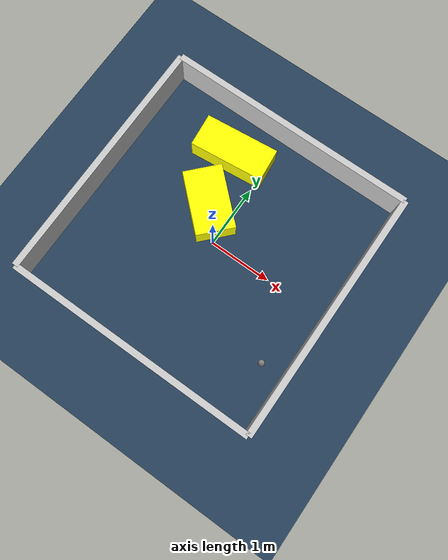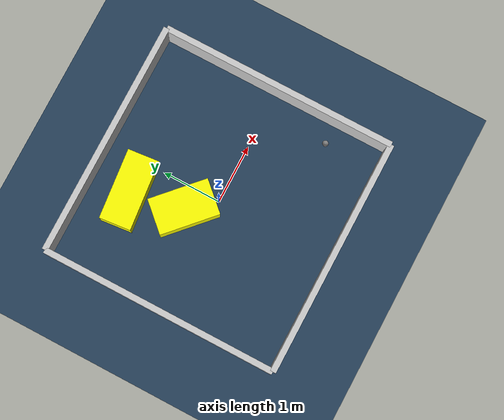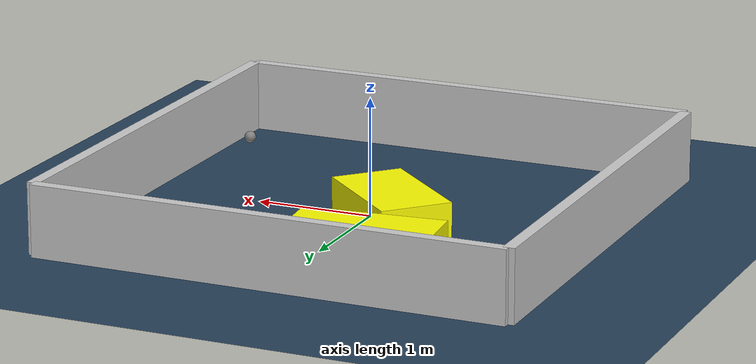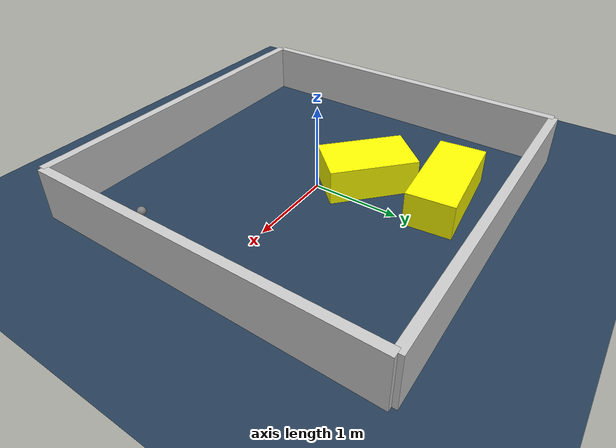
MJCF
<?xml version="1.0" ?>
<mujoco model="generated_environment">
  <option timestep="0.01" integrator="RK4" cone="elliptic"/>
  <default>
    <geom density="1"/>
  </default>
  <asset>
    <texture builtin="gradient" height="3072" rgb1="0.3 0.5 0.7" rgb2="0 0 0" type="skybox" width="512"/>
    <texture builtin="checker" height="300" mark="edge" markrgb="0.8 0.8 0.8" name="groundplane" rgb1="0.2 0.3 0.4" rgb2="0.1 0.2 0.3" type="2d" width="300"/>
    <material name="groundplane" reflectance="0.2" texrepeat="5 5" texture="groundplane" texuniform="true"/>
    <material name="robot" rgba="0.0 1.0 0.0 1"/>
  </asset>
  <worldbody>
    <light dir="0 0 -1" directional="true" pos="0 0 1.5"/>
    <geom condim="4" friction="1.0 0.005 0.001" material="groundplane" name="floor" size="0 0 0.05" type="plane"/>
    <body name="walls">
      <geom name="wall_1" condim="4" pos="-2.0 0.0 0.3" rgba="0.800000011920929 0.800000011920929 0.800000011920929 1.0" size="0.05 2.0 0.3" type="box"/>
      <geom name="wall_2" condim="4" pos="2.0 0.0 0.3" rgba="0.800000011920929 0.800000011920929 0.800000011920929 1.0" size="0.05 2.0 0.3" type="box"/>
      <geom name="wall_3" condim="4" pos="0.0 -2.0 0.3" rgba="0.800000011920929 0.800000011920929 0.800000011920929 1.0" size="2.0 0.05 0.3" type="box"/>
      <geom name="wall_4" condim="4" pos="0.0 2.0 0.3" rgba="0.800000011920929 0.800000011920929 0.800000011920929 1.0" size="2.0 0.05 0.3" type="box"/>
    </body>
    <body name="robot">
      <joint name="joint_x" type="slide" pos="0 0 0" axis="1 0 0"/>
      <joint name="joint_y" type="slide" pos="0 0 0" axis="0 1 0"/>
      <geom name="robot" type="sphere" pos="1.6065967432712789 -1.0736099949544162 0.2" size="0.05" mass="5." friction="1.0 0.005 0.0001" condim="4"/>
      <site name="sensor_ball"/>
    </body>
    <body name="obstacle_1_movable">
      <geom name="obstacle_1_movable" condim="4" pos="-0.37098787027354274 0.4299517577783081 0.2" euler="0 0 137.10974037013966" friction="1.0 0.005 0.001" rgba="1 1 0 1" size="0.5036183973956128 0.3025475756406832 0.2" type="box" mass="0.1"/>
      <joint type="free"/>
    </body>
    <body name="obstacle_2_movable">
      <geom name="obstacle_2_movable" condim="4" pos="-0.5356203321294442 1.318975834675416 0.2" euler="0 0 95.71269088263587" friction="1.0 0.005 0.001" rgba="1 1 0 1" size="0.26513117238119954 0.5923037357815808 0.2" type="box" mass="0.1"/>
      <joint type="free"/>
    </body>
  </worldbody>
  <actuator>
    <motor name="actuator_x" joint="joint_x" gear="1" ctrlrange="-1 1"/>
    <motor name="actuator_y" joint="joint_y" gear="1" ctrlrange="-1 1"/>
  </actuator>
</mujoco>
